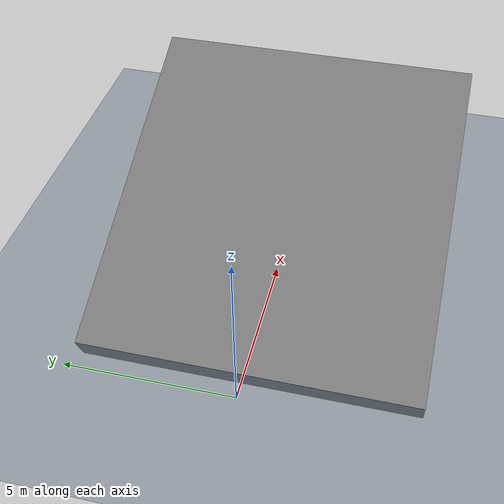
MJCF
<mujoco model="slope_7">
  <!-- Terrain Type: slope, Level: 7, Slope angle (degrees): 23.2193 -->
  <statistic center="0 0 0.1" extent="0.8" />
  <visual>
    <headlight diffuse="0.6 0.6 0.6" ambient="0.3 0.3 0.3" specular="0 0 0" />
    <rgba haze="0.15 0.25 0.35 1" />
    <global azimuth="-130" elevation="-20" />
  </visual>
  <asset>
    <texture type="skybox" builtin="gradient" rgb1="0.3 0.5 0.7" rgb2="0 0 0" width="512" height="3072" />
    <texture type="2d" name="groundplane" builtin="checker" mark="edge" rgb1="0.2 0.3 0.4" rgb2="0.1 0.2 0.3" markrgb="0.8 0.8 0.8" width="300" height="300" />
    <material name="groundplane" texture="groundplane" texuniform="true" texrepeat="5 5" reflectance="0.0" />
  </asset>
  <worldbody>
    <light pos="0 0 1.5" dir="0 0 -1" directional="true" />
    <geom name="floor" size="0 0 0.05" type="plane" material="groundplane" />
    <geom pos="5.9971260075014605 0.0 1.685498817012911" type="box" size="5.440682402052154 5.0 0.5" quat="0.9795413125474028 0.0 -0.20124317879846595 0.0" />
  </worldbody>
</mujoco>
